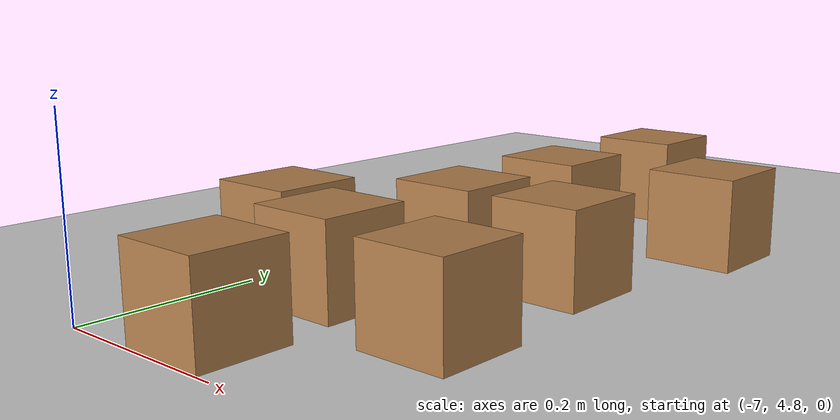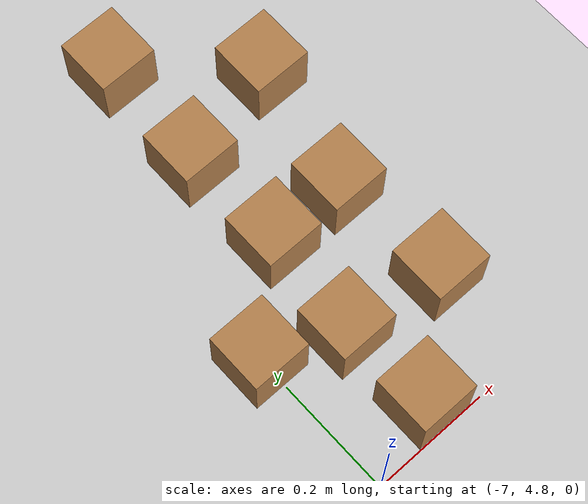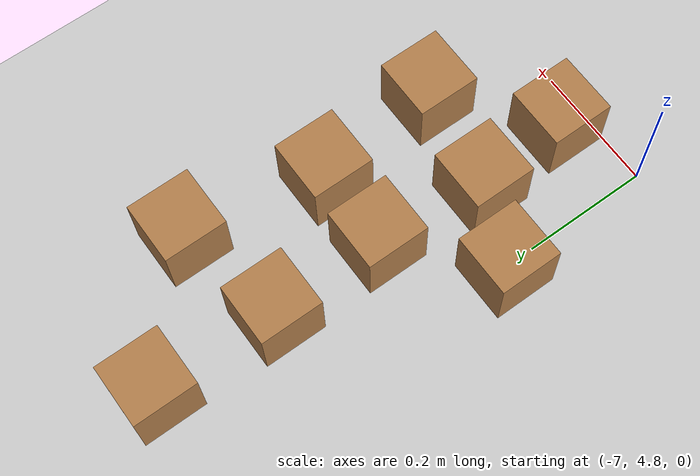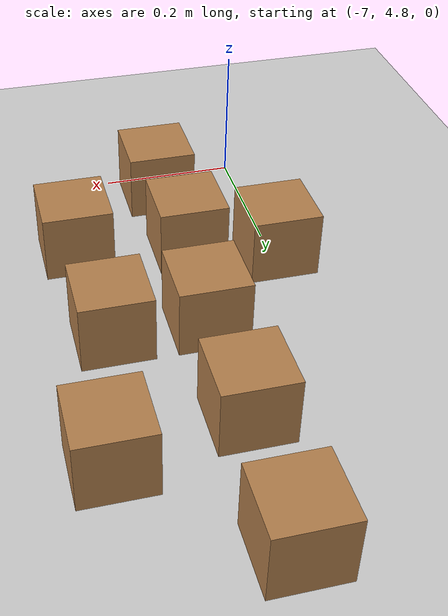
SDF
<sdf version="1.7">
 <world name="default">
  <model name="ground_plane">
   <static>1</static>
   <link name="link">
    <collision name="collision">
     <geometry><plane><normal>0 0 1</normal><size>100 100</size></plane></geometry>
     <surface>
      <contact><collide_bitmask>65535</collide_bitmask></contact>
      <friction><ode><mu>1.0</mu><mu2>1.0</mu2></ode></friction>
     </surface>
    </collision>
    <visual name="visual">
     <cast_shadows>0</cast_shadows>
     <geometry><plane><normal>0 0 1</normal><size>100 100</size></plane></geometry>
     <material>
      <script><uri>file://media/materials/scripts/gazebo.material</uri><name>Gazebo/Grey</name></script>
     </material>
    </visual>
   </link>
  </model>
  <model name="wood_cube_10cm_clone_2_clone">
   <link name="link">
    <pose>0 0 0.05 0 -0 0</pose>
    <inertial>
     <mass>0.5167</mass>
     <inertia>
      <ixx>0.000861167</ixx>
      <ixy>0</ixy>
      <ixz>0</ixz>
      <iyy>0.000861167</iyy>
      <iyz>0</iyz>
      <izz>0.000861167</izz>
     </inertia>
    </inertial>
    <collision name="collision">
     <geometry><box><size>0.1 0.1 0.1</size></box></geometry>
     <surface>
      <contact>
       <poissons_ratio>0.347</poissons_ratio>
       <elastic_modulus>8.8e+09</elastic_modulus>
       <ode><kp>100000</kp><kd>100</kd><max_vel>100</max_vel><min_depth>0.001</min_depth></ode>
      </contact>
      <friction>
       <torsional>
        <coefficient>1</coefficient>
        <use_patch_radius>0</use_patch_radius>
        <surface_radius>0.01</surface_radius>
       </torsional>
      </friction>
     </surface>
    </collision>
    <visual name="visual">
     <geometry><box><size>0.1 0.1 0.1</size></box></geometry>
     <material>
      <script><uri>file://media/materials/scripts/gazebo.material</uri><name>Gazebo/Wood</name></script>
     </material>
    </visual>
   </link>
   <pose>-6.86928 4.85228 -0.001013 0 -0 0</pose>
  </model>
  <model name="wood_cube_10cm_clone_2_clone_1">
   <link name="link">
    <pose>0 0 0.05 0 -0 0</pose>
    <inertial>
     <mass>0.5167</mass>
     <inertia>
      <ixx>0.000861167</ixx>
      <ixy>0</ixy>
      <ixz>0</ixz>
      <iyy>0.000861167</iyy>
      <iyz>0</iyz>
      <izz>0.000861167</izz>
     </inertia>
    </inertial>
    <collision name="collision">
     <geometry><box><size>0.1 0.1 0.1</size></box></geometry>
     <surface>
      <contact>
       <poissons_ratio>0.347</poissons_ratio>
       <elastic_modulus>8.8e+09</elastic_modulus>
       <ode><kp>100000</kp><kd>100</kd><max_vel>100</max_vel><min_depth>0.001</min_depth></ode>
      </contact>
      <friction>
       <torsional>
        <coefficient>1</coefficient>
        <use_patch_radius>0</use_patch_radius>
        <surface_radius>0.01</surface_radius>
       </torsional>
      </friction>
     </surface>
    </collision>
    <visual name="visual">
     <geometry><box><size>0.1 0.1 0.1</size></box></geometry>
     <material>
      <script><uri>file://media/materials/scripts/gazebo.material</uri><name>Gazebo/Wood</name></script>
     </material>
    </visual>
   </link>
   <pose>-6.88145 5.00376 -0.001013 0 -0 0</pose>
  </model>
  <model name="wood_cube_10cm_clone_2_clone_2">
   <link name="link">
    <pose>0 0 0.05 0 -0 0</pose>
    <inertial>
     <mass>0.5167</mass>
     <inertia>
      <ixx>0.000861167</ixx>
      <ixy>0</ixy>
      <ixz>0</ixz>
      <iyy>0.000861167</iyy>
      <iyz>0</iyz>
      <izz>0.000861167</izz>
     </inertia>
    </inertial>
    <collision name="collision">
     <geometry><box><size>0.1 0.1 0.1</size></box></geometry>
     <surface>
      <contact>
       <poissons_ratio>0.347</poissons_ratio>
       <elastic_modulus>8.8e+09</elastic_modulus>
       <ode><kp>100000</kp><kd>100</kd><max_vel>100</max_vel><min_depth>0.001</min_depth></ode>
      </contact>
      <friction>
       <torsional>
        <coefficient>1</coefficient>
        <use_patch_radius>0</use_patch_radius>
        <surface_radius>0.01</surface_radius>
       </torsional>
      </friction>
     </surface>
    </collision>
    <visual name="visual">
     <geometry><box><size>0.1 0.1 0.1</size></box></geometry>
     <material>
      <script><uri>file://media/materials/scripts/gazebo.material</uri><name>Gazebo/Wood</name></script>
     </material>
    </visual>
   </link>
   <pose>-7.00345 5.05488 -0.001013 0 -0 0</pose>
  </model>
  <model name="wood_cube_10cm_clone_2_clone_3">
   <link name="link">
    <pose>0 0 0.05 0 -0 0</pose>
    <inertial>
     <mass>0.5167</mass>
     <inertia>
      <ixx>0.000861167</ixx>
      <ixy>0</ixy>
      <ixz>0</ixz>
      <iyy>0.000861167</iyy>
      <iyz>0</iyz>
      <izz>0.000861167</izz>
     </inertia>
    </inertial>
    <collision name="collision">
     <geometry><box><size>0.1 0.1 0.1</size></box></geometry>
     <surface>
      <contact>
       <poissons_ratio>0.347</poissons_ratio>
       <elastic_modulus>8.8e+09</elastic_modulus>
       <ode><kp>100000</kp><kd>100</kd><max_vel>100</max_vel><min_depth>0.001</min_depth></ode>
      </contact>
      <friction>
       <torsional>
        <coefficient>1</coefficient>
        <use_patch_radius>0</use_patch_radius>
        <surface_radius>0.01</surface_radius>
       </torsional>
      </friction>
     </surface>
    </collision>
    <visual name="visual">
     <geometry><box><size>0.1 0.1 0.1</size></box></geometry>
     <material>
      <script><uri>file://media/materials/scripts/gazebo.material</uri><name>Gazebo/Wood</name></script>
     </material>
    </visual>
   </link>
   <pose>-6.86543 5.17872 -0.001013 0 -0 0</pose>
  </model>
  <model name="wood_cube_10cm_clone_2_clone_10">
   <link name="link">
    <pose>0 0 0.05 0 -0 0</pose>
    <inertial>
     <mass>0.5167</mass>
     <inertia>
      <ixx>0.000861167</ixx>
      <ixy>0</ixy>
      <ixz>0</ixz>
      <iyy>0.000861167</iyy>
      <iyz>0</iyz>
      <izz>0.000861167</izz>
     </inertia>
    </inertial>
    <collision name="collision">
     <geometry><box><size>0.1 0.1 0.1</size></box></geometry>
     <surface>
      <contact>
       <poissons_ratio>0.347</poissons_ratio>
       <elastic_modulus>8.8e+09</elastic_modulus>
       <ode><kp>100000</kp><kd>100</kd><max_vel>100</max_vel><min_depth>0.001</min_depth></ode>
      </contact>
      <friction>
       <torsional>
        <coefficient>1</coefficient>
        <use_patch_radius>0</use_patch_radius>
        <surface_radius>0.01</surface_radius>
       </torsional>
      </friction>
     </surface>
    </collision>
    <visual name="visual">
     <geometry><box><size>0.1 0.1 0.1</size></box></geometry>
     <material>
      <script><uri>file://media/materials/scripts/gazebo.material</uri><name>Gazebo/Wood</name></script>
     </material>
    </visual>
   </link>
   <pose>-6.86883 5.35972 -0.001013 0 -0 0</pose>
  </model>
  <model name="wood_cube_10cm_clone_2_clone_23">
   <link name="link">
    <pose>0 0 0.05 0 -0 0</pose>
    <inertial>
     <mass>0.5167</mass>
     <inertia>
      <ixx>0.000861167</ixx>
      <ixy>0</ixy>
      <ixz>0</ixz>
      <iyy>0.000861167</iyy>
      <iyz>0</iyz>
      <izz>0.000861167</izz>
     </inertia>
    </inertial>
    <collision name="collision">
     <geometry><box><size>0.1 0.1 0.1</size></box></geometry>
     <surface>
      <contact>
       <poissons_ratio>0.347</poissons_ratio>
       <elastic_modulus>8.8e+09</elastic_modulus>
       <ode><kp>100000</kp><kd>100</kd><max_vel>100</max_vel><min_depth>0.001</min_depth></ode>
      </contact>
      <friction>
       <torsional>
        <coefficient>1</coefficient>
        <use_patch_radius>0</use_patch_radius>
        <surface_radius>0.01</surface_radius>
       </torsional>
      </friction>
     </surface>
    </collision>
    <visual name="visual">
     <geometry><box><size>0.1 0.1 0.1</size></box></geometry>
     <material>
      <script><uri>file://media/materials/scripts/gazebo.material</uri><name>Gazebo/Wood</name></script>
     </material>
    </visual>
   </link>
   <pose>-6.86354 5.5574 -0.001013 0 -0 0</pose>
  </model>
  <model name="wood_cube_10cm_clone_2_clone_24">
   <link name="link">
    <pose>0 0 0.05 0 -0 0</pose>
    <inertial>
     <mass>0.5167</mass>
     <inertia>
      <ixx>0.000861167</ixx>
      <ixy>0</ixy>
      <ixz>0</ixz>
      <iyy>0.000861167</iyy>
      <iyz>0</iyz>
      <izz>0.000861167</izz>
     </inertia>
    </inertial>
    <collision name="collision">
     <geometry><box><size>0.1 0.1 0.1</size></box></geometry>
     <surface>
      <contact>
       <poissons_ratio>0.347</poissons_ratio>
       <elastic_modulus>8.8e+09</elastic_modulus>
       <ode><kp>100000</kp><kd>100</kd><max_vel>100</max_vel><min_depth>0.001</min_depth></ode>
      </contact>
      <friction>
       <torsional>
        <coefficient>1</coefficient>
        <use_patch_radius>0</use_patch_radius>
        <surface_radius>0.01</surface_radius>
       </torsional>
      </friction>
     </surface>
    </collision>
    <visual name="visual">
     <geometry><box><size>0.1 0.1 0.1</size></box></geometry>
     <material>
      <script><uri>file://media/materials/scripts/gazebo.material</uri><name>Gazebo/Wood</name></script>
     </material>
    </visual>
   </link>
   <pose>-6.69226 5.39857 -0.001013 0 -0 0</pose>
  </model>
  <model name="wood_cube_10cm_clone_2_clone_25">
   <link name="link">
    <pose>0 0 0.05 0 -0 0</pose>
    <inertial>
     <mass>0.5167</mass>
     <inertia>
      <ixx>0.000861167</ixx>
      <ixy>0</ixy>
      <ixz>0</ixz>
      <iyy>0.000861167</iyy>
      <iyz>0</iyz>
      <izz>0.000861167</izz>
     </inertia>
    </inertial>
    <collision name="collision">
     <geometry><box><size>0.1 0.1 0.1</size></box></geometry>
     <surface>
      <contact>
       <poissons_ratio>0.347</poissons_ratio>
       <elastic_modulus>8.8e+09</elastic_modulus>
       <ode><kp>100000</kp><kd>100</kd><max_vel>100</max_vel><min_depth>0.001</min_depth></ode>
      </contact>
      <friction>
       <torsional>
        <coefficient>1</coefficient>
        <use_patch_radius>0</use_patch_radius>
        <surface_radius>0.01</surface_radius>
       </torsional>
      </friction>
     </surface>
    </collision>
    <visual name="visual">
     <geometry><box><size>0.1 0.1 0.1</size></box></geometry>
     <material>
      <script><uri>file://media/materials/scripts/gazebo.material</uri><name>Gazebo/Wood</name></script>
     </material>
    </visual>
   </link>
   <pose>-6.73532 5.17859 -0.001013 0 -0 0</pose>
  </model>
  <model name="wood_cube_10cm_clone_2_clone_26">
   <link name="link">
    <pose>0 0 0.05 0 -0 0</pose>
    <inertial>
     <mass>0.5167</mass>
     <inertia>
      <ixx>0.000861167</ixx>
      <ixy>0</ixy>
      <ixz>0</ixz>
      <iyy>0.000861167</iyy>
      <iyz>0</iyz>
      <izz>0.000861167</izz>
     </inertia>
    </inertial>
    <collision name="collision">
     <geometry><box><size>0.1 0.1 0.1</size></box></geometry>
     <surface>
      <contact>
       <poissons_ratio>0.347</poissons_ratio>
       <elastic_modulus>8.8e+09</elastic_modulus>
       <ode><kp>100000</kp><kd>100</kd><max_vel>100</max_vel><min_depth>0.001</min_depth></ode>
      </contact>
      <friction>
       <torsional>
        <coefficient>1</coefficient>
        <use_patch_radius>0</use_patch_radius>
        <surface_radius>0.01</surface_radius>
       </torsional>
      </friction>
     </surface>
    </collision>
    <visual name="visual">
     <geometry><box><size>0.1 0.1 0.1</size></box></geometry>
     <material>
      <script><uri>file://media/materials/scripts/gazebo.material</uri><name>Gazebo/Wood</name></script>
     </material>
    </visual>
   </link>
   <pose>-6.71871 4.97851 -0.001013 0 -0 0</pose>
  </model>
 </world>
</sdf>
